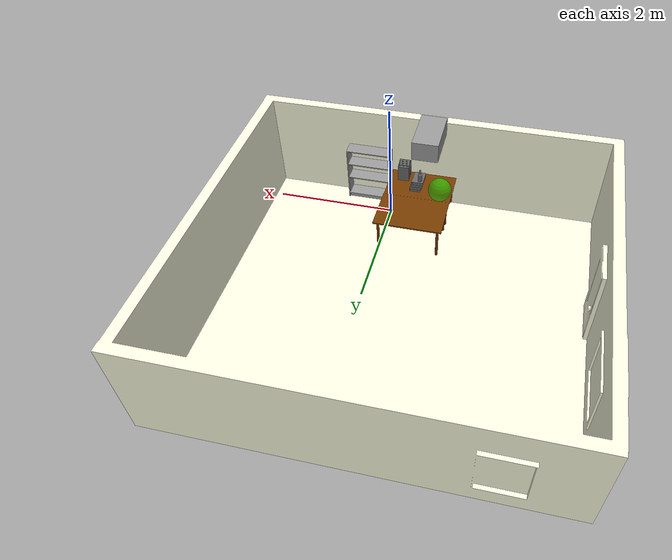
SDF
<sdf version="1.6">
 <world name="kuka_table">
  <physics type="ode">
   <max_step_size>0.004</max_step_size>
   <max_contacts>100</max_contacts>
   <ode>
    <solver>
     <iters>25</iters>
     <type>world</type>
     <sor>1.3</sor>
     <use_dynamic_moi_rescaling>0</use_dynamic_moi_rescaling>
    </solver>
    <constraints><cfm>0</cfm><contact_surface_layer>0.0</contact_surface_layer></constraints>
   </ode>
  </physics>
  <model name="GoalArea">
   <pose>-0.79 -0.30 0.3719 0 -0 0</pose>
   <static>1</static>
   <link name="chassis">
    <visual name="GoalArea_visual">
     <geometry><sphere><radius>0.2</radius></sphere></geometry>
     <material>
      <script><uri>file://media/materials/scripts/gazebo.material</uri><name>Gazebo/Grey</name></script>
      <ambient>0 1 0 0.5</ambient>
     </material>
    </visual>
   </link>
  </model>
  <model name="room">
   <pose>-1 0.3 -0.6 0.0 0.0 0</pose>
   <static>1</static>
   <link name="room_link">
    <visual name="visual">
     <geometry>
      <mesh><scale>1 1 1</scale><uri>file://KukaTableEnvironment/meshes/doorScene.dae</uri></mesh>
     </geometry>
     <material>
      <script><uri>file://media/materials/scripts/gazebo.material</uri><name>Gazebo/Grey</name></script>
      <ambient>1.5 1.19411764705882352941 0.88823529411764705882 1</ambient>
     </material>
    </visual>
    <collision name="collision">
     <geometry>
      <mesh><scale>1 1 1</scale><uri>file://KukaTableEnvironment/meshes/doorScene.dae</uri></mesh>
     </geometry>
    </collision>
   </link>
  </model>
  <model name="shelf">
   <pose>0.325 0.275 -0.6 0.0 0.0 0</pose>
   <static>1</static>
   <link name="shelf_link">
    <visual name="visual">
     <geometry>
      <mesh><scale>1 1 1</scale><uri>file://KukaTableEnvironment/meshes/wall_shelf.dae</uri></mesh>
     </geometry>
     <material>
      <script><uri>file://media/materials/scripts/gazebo.material</uri><name>Gazebo/Grey</name></script>
      <ambient>1 1 1 1</ambient>
     </material>
    </visual>
    <collision name="collision">
     <geometry>
      <mesh><scale>1 1 1</scale><uri>file://KukaTableEnvironment/meshes/wall_shelf.dae</uri></mesh>
     </geometry>
    </collision>
   </link>
  </model>
  <model name="wallShelf">
   <pose>-0.5 -0.3 1.1 1.57079632679489661923 1.57079632679489661923 0</pose>
   <static>1</static>
   <link name="wallShelf_link">
    <visual name="visual">
     <geometry>
      <mesh><scale>0.5 0.7 0.5</scale><uri>file://KukaTableEnvironment/meshes/cabinet.dae</uri></mesh>
     </geometry>
     <material>
      <script><uri>file://media/materials/scripts/gazebo.material</uri><name>Gazebo/Grey</name></script>
     </material>
    </visual>
    <collision name="collision">
     <geometry>
      <mesh><scale>0.5 0.7 0.5</scale><uri>file://KukaTableEnvironment/meshes/cabinet.dae</uri></mesh>
     </geometry>
    </collision>
   </link>
  </model>
  <model name="tables1">
   <pose>0.3 0.2 -0.69 0.0 0.0 0</pose>
   <static>1</static>
   <link name="table1_link">
    <visual name="visual">
     <geometry>
      <mesh><scale>1 1 1</scale><uri>file://KukaTableEnvironment/meshes/kuka_table2_tables.dae</uri></mesh>
     </geometry>
     <material>
      <script><uri>file://media/materials/scripts/gazebo.material</uri><name>Gazebo/Grey</name></script>
      <ambient>0.45882352941176470588 0.22941176470588235294 0 1</ambient>
     </material>
    </visual>
    <collision name="collision">
     <geometry>
      <mesh><scale>1 1 1</scale><uri>file://KukaTableEnvironment/meshes/kuka_table2_tables.dae</uri></mesh>
     </geometry>
    </collision>
   </link>
  </model>
  <model name="books1">
   <pose>0.4 0.33 -0.7 0.0 0.0 0</pose>
   <static>1</static>
   <link name="books1_link">
    <visual name="visual">
     <geometry>
      <mesh><scale>1 1 1</scale><uri>file://KukaTableEnvironment/meshes/kuka_table2_books1.dae</uri></mesh>
     </geometry>
     <material>
      <script><uri>file://media/materials/scripts/gazebo.material</uri></script>
      <ambient>0.4 0.4 0.4 1</ambient>
     </material>
    </visual>
    <collision name="collision">
     <geometry>
      <mesh><scale>1 1 1</scale><uri>file://KukaTableEnvironment/meshes/kuka_table2_books1.dae</uri></mesh>
     </geometry>
    </collision>
   </link>
  </model>
  <model name="books2">
   <pose>0.35 0.4 -0.7 0.0 0.0 0</pose>
   <static>1</static>
   <link name="books2_link">
    <visual name="visual">
     <geometry>
      <mesh><scale>1 1 1</scale><uri>file://KukaTableEnvironment/meshes/kuka_table2_books2.dae</uri></mesh>
     </geometry>
     <material>
      <script><uri>file://media/materials/scripts/gazebo.material</uri></script>
      <ambient>0.4 0.4 0.4 1</ambient>
     </material>
    </visual>
    <collision name="collision">
     <geometry>
      <mesh><scale>1 1 1</scale><uri>file://KukaTableEnvironment/meshes/kuka_table2_books2.dae</uri></mesh>
     </geometry>
    </collision>
   </link>
  </model>
  <model name="bottle">
   <pose>0.26 0.41 -0.7 0.0 0.0 0</pose>
   <static>1</static>
   <link name="bottle_link">
    <visual name="visual">
     <geometry><mesh><scale>1 1 1</scale><uri>file://KukaTableEnvironment/meshes/bottle.dae</uri></mesh></geometry>
     <material>
      <script><uri>file://media/materials/scripts/gazebo.material</uri></script>
      <ambient>0.4 0.4 0.4 0.75</ambient>
     </material>
    </visual>
    <collision name="collision">
     <geometry><mesh><scale>1 1 1</scale><uri>file://KukaTableEnvironment/meshes/bottle.dae</uri></mesh></geometry>
    </collision>
   </link>
  </model>
  <light name="user_spot_light_0" type="spot">
   <pose>-0.008974 0.005149 2 0 -0 0</pose>
   <diffuse>0.5 0.5 0.5 1</diffuse>
   <specular>0.1 0.1 0.1 1</specular>
   <direction>0 0 -1</direction>
   <attenuation>
    <range>20</range>
    <constant>0.5</constant>
    <linear>0.01</linear>
    <quadratic>0.001</quadratic>
   </attenuation>
   <cast_shadows>0</cast_shadows>
   <spot><inner_angle>0.6</inner_angle><outer_angle>1</outer_angle><falloff>1</falloff></spot>
  </light>
  <light name="user_directional_light_0" type="directional">
   <pose>0.080405 1.64708 1 -0.7 -0 0</pose>
   <diffuse>0.5 0.5 0.5 1</diffuse>
   <specular>0.1 0.1 0.1 1</specular>
   <direction>0.1 0.1 -0.9</direction>
   <attenuation>
    <range>20</range>
    <constant>0.5</constant>
    <linear>0.01</linear>
    <quadratic>0.001</quadratic>
   </attenuation>
  </light>
 </world>
</sdf>
